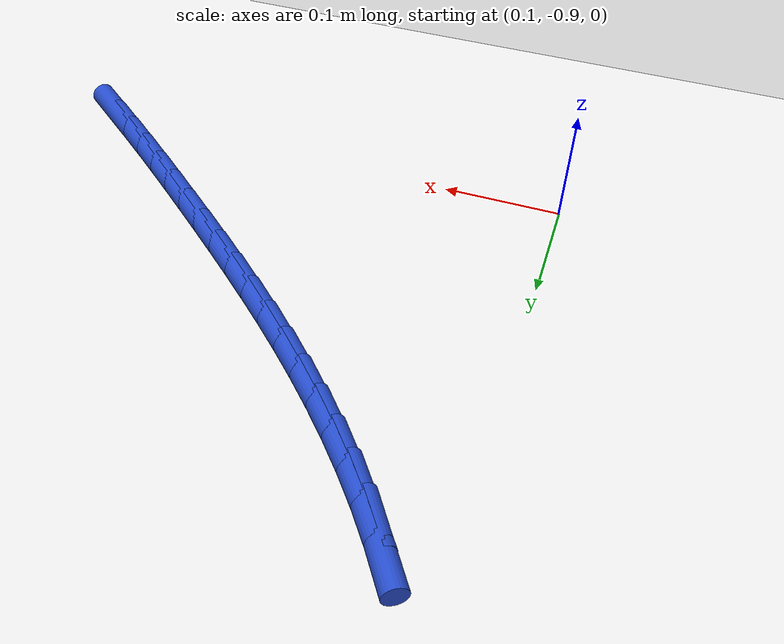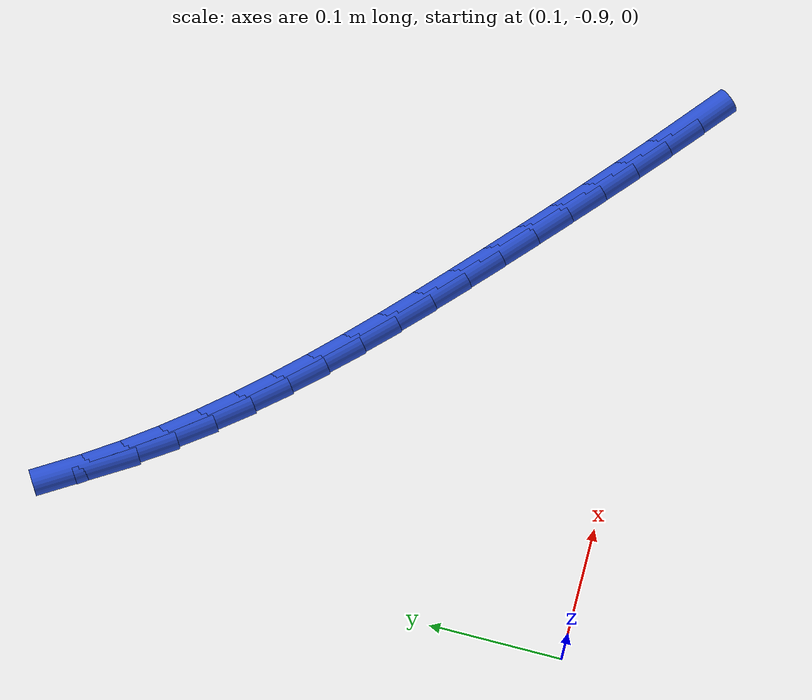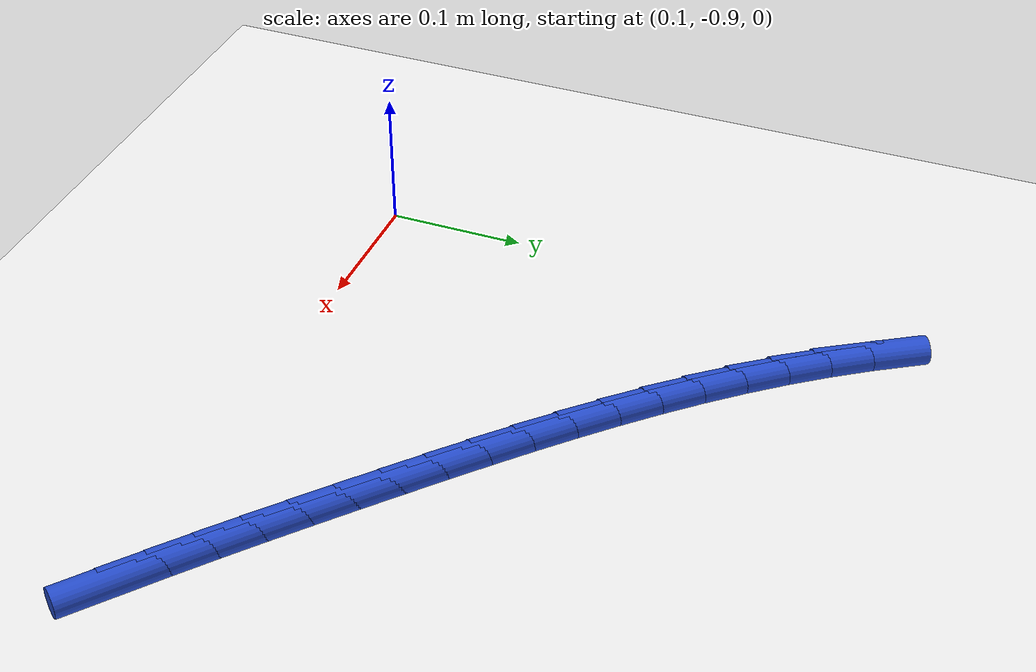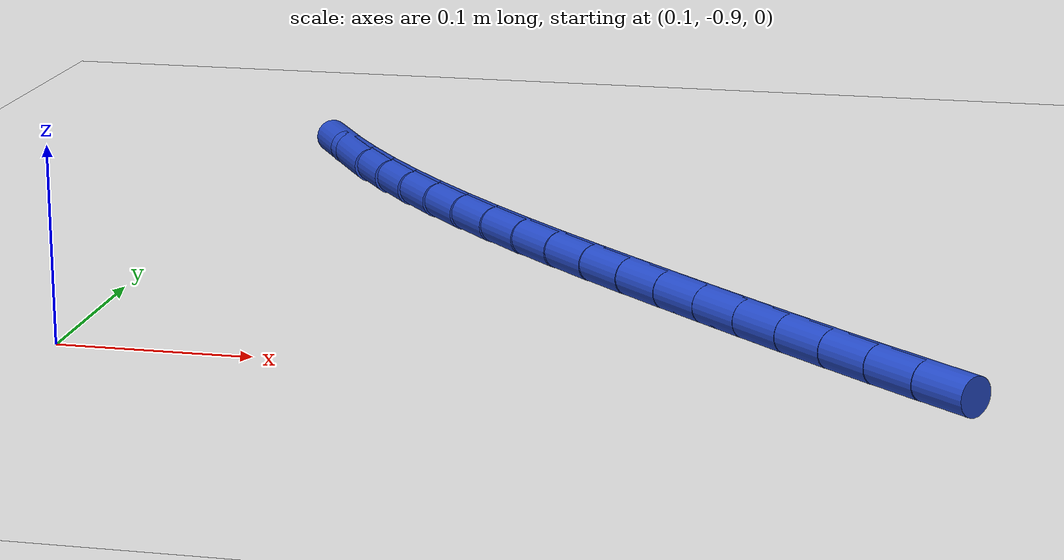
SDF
<sdf version="1.6">
 <world name="default">
  <model name="ground_plane">
   <static>1</static>
   <link name="link">
    <collision name="collision">
     <geometry><plane><normal>0 0 1</normal><size>100 100</size></plane></geometry>
     <surface><friction><ode><mu>100</mu><mu2>50</mu2></ode></friction></surface>
    </collision>
    <visual name="visual">
     <cast_shadows>0</cast_shadows>
     <geometry><plane><normal>0 0 1</normal><size>100 100</size></plane></geometry>
     <material>
      <script><uri>file://media/materials/scripts/gazebo.material</uri><name>Gazebo/WhiteGlow</name></script>
     </material>
    </visual>
   </link>
  </model>
  <model name="line">
   <link name="link_185">
    <pose>0.5148802186777577 -0.8932716584947242 0.01 0 1.57 -0.6899984234965191</pose>
    <collision name="collision">
     <geometry><cylinder><radius>0.01</radius><length>0.08</length></cylinder></geometry>
    </collision>
    <visual name="visual">
     <material>
      <script><name>Gazebo/Blue</name><uri>file://media/materials/scripts/gazebo.material</uri></script>
     </material>
     <geometry><cylinder><radius>0.01</radius><length>0.08</length></cylinder></geometry>
    </visual>
   </link>
   <link name="link_186">
    <pose>0.49137870944372686 -0.8738750766835465 0.01 0 1.57 -0.7010132687124384</pose>
    <collision name="collision">
     <geometry><cylinder><radius>0.01</radius><length>0.08</length></cylinder></geometry>
    </collision>
    <visual name="visual">
     <material>
      <script><name>Gazebo/Blue</name><uri>file://media/materials/scripts/gazebo.material</uri></script>
     </material>
     <geometry><cylinder><radius>0.01</radius><length>0.08</length></cylinder></geometry>
    </visual>
   </link>
   <link name="link_187">
    <pose>0.4681795832727678 -0.8542945039874247 0.01 0 1.57 -0.7106507558564402</pose>
    <collision name="collision">
     <geometry><cylinder><radius>0.01</radius><length>0.08</length></cylinder></geometry>
    </collision>
    <visual name="visual">
     <material>
      <script><name>Gazebo/Blue</name><uri>file://media/materials/scripts/gazebo.material</uri></script>
     </material>
     <geometry><cylinder><radius>0.01</radius><length>0.08</length></cylinder></geometry>
    </visual>
   </link>
   <link name="link_188">
    <pose>0.4452123560387705 -0.834527511222739 0.01 0 1.57 -0.7188487778604937</pose>
    <collision name="collision">
     <geometry><cylinder><radius>0.01</radius><length>0.08</length></cylinder></geometry>
    </collision>
    <visual name="visual">
     <material>
      <script><name>Gazebo/Blue</name><uri>file://media/materials/scripts/gazebo.material</uri></script>
     </material>
     <geometry><cylinder><radius>0.01</radius><length>0.08</length></cylinder></geometry>
    </visual>
   </link>
   <link name="link_189">
    <pose>0.42240654361562596 -0.814571669205872 0.01 0 1.57 -0.7255620400661243</pose>
    <collision name="collision">
     <geometry><cylinder><radius>0.01</radius><length>0.08</length></cylinder></geometry>
    </collision>
    <visual name="visual">
     <material>
      <script><name>Gazebo/Blue</name><uri>file://media/materials/scripts/gazebo.material</uri></script>
     </material>
     <geometry><cylinder><radius>0.01</radius><length>0.08</length></cylinder></geometry>
    </visual>
   </link>
   <link name="link_190">
    <pose>0.39969166187722394 -0.7944245487532033 0.01 0 1.57 -0.730764625793795</pose>
    <collision name="collision">
     <geometry><cylinder><radius>0.01</radius><length>0.08</length></cylinder></geometry>
    </collision>
    <visual name="visual">
     <material>
      <script><name>Gazebo/Blue</name><uri>file://media/materials/scripts/gazebo.material</uri></script>
     </material>
     <geometry><cylinder><radius>0.01</radius><length>0.08</length></cylinder></geometry>
    </visual>
   </link>
   <link name="link_191">
    <pose>0.37699730522503305 -0.7740836996979357 0.01 0 1.57 -0.7356637230261693</pose>
    <collision name="collision">
     <geometry><cylinder><radius>0.01</radius><length>0.08</length></cylinder></geometry>
    </collision>
    <visual name="visual">
     <material>
      <script><name>Gazebo/Blue</name><uri>file://media/materials/scripts/gazebo.material</uri></script>
     </material>
     <geometry><cylinder><radius>0.01</radius><length>0.08</length></cylinder></geometry>
    </visual>
   </link>
   <link name="link_192">
    <pose>0.3542960207546919 -0.7535351945787901 0.01 0 1.57 -0.7434827450134199</pose>
    <collision name="collision">
     <geometry><cylinder><radius>0.01</radius><length>0.08</length></cylinder></geometry>
    </collision>
    <visual name="visual">
     <material>
      <script><name>Gazebo/Blue</name><uri>file://media/materials/scripts/gazebo.material</uri></script>
     </material>
     <geometry><cylinder><radius>0.01</radius><length>0.08</length></cylinder></geometry>
    </visual>
   </link>
   <link name="link_193">
    <pose>0.33167434576835775 -0.7327346468633336 0.01 0 1.57 -0.7547487347782063</pose>
    <collision name="collision">
     <geometry><cylinder><radius>0.01</radius><length>0.08</length></cylinder></geometry>
    </collision>
    <visual name="visual">
     <material>
      <script><name>Gazebo/Blue</name><uri>file://media/materials/scripts/gazebo.material</uri></script>
     </material>
     <geometry><cylinder><radius>0.01</radius><length>0.08</length></cylinder></geometry>
    </visual>
   </link>
   <link name="link_194">
    <pose>0.30923751528858623 -0.7116326738425897 0.01 0 1.57 -0.7694825953252268</pose>
    <collision name="collision">
     <geometry><cylinder><radius>0.01</radius><length>0.08</length></cylinder></geometry>
    </collision>
    <visual name="visual">
     <material>
      <script><name>Gazebo/Blue</name><uri>file://media/materials/scripts/gazebo.material</uri></script>
     </material>
     <geometry><cylinder><radius>0.01</radius><length>0.08</length></cylinder></geometry>
    </visual>
   </link>
   <link name="link_195">
    <pose>0.28709076433793257 -0.6901798928075812 0.01 0 1.57 -0.7877267164049757</pose>
    <collision name="collision">
     <geometry><cylinder><radius>0.01</radius><length>0.08</length></cylinder></geometry>
    </collision>
    <visual name="visual">
     <material>
      <script><name>Gazebo/Blue</name><uri>file://media/materials/scripts/gazebo.material</uri></script>
     </material>
     <geometry><cylinder><radius>0.01</radius><length>0.08</length></cylinder></geometry>
    </visual>
   </link>
   <link name="link_196">
    <pose>0.2653393279389535 -0.6683269210493324 0.01 0 1.57 -0.8095398670313654</pose>
    <collision name="collision">
     <geometry><cylinder><radius>0.01</radius><length>0.08</length></cylinder></geometry>
    </collision>
    <visual name="visual">
     <material>
      <script><name>Gazebo/Blue</name><uri>file://media/materials/scripts/gazebo.material</uri></script>
     </material>
     <geometry><cylinder><radius>0.01</radius><length>0.08</length></cylinder></geometry>
    </visual>
   </link>
   <link name="link_197">
    <pose>0.2440884411142042 -0.6460243758588667 0.01 0 1.57 -0.834990785168333</pose>
    <collision name="collision">
     <geometry><cylinder><radius>0.01</radius><length>0.08</length></cylinder></geometry>
    </collision>
    <visual name="visual">
     <material>
      <script><name>Gazebo/Blue</name><uri>file://media/materials/scripts/gazebo.material</uri></script>
     </material>
     <geometry><cylinder><radius>0.01</radius><length>0.08</length></cylinder></geometry>
    </visual>
   </link>
   <link name="link_198">
    <pose>0.22344333888624043 -0.6232228745272074 0.01 0 1.57 -0.8641501126487035</pose>
    <collision name="collision">
     <geometry><cylinder><radius>0.01</radius><length>0.08</length></cylinder></geometry>
    </collision>
    <visual name="visual">
     <material>
      <script><name>Gazebo/Blue</name><uri>file://media/materials/scripts/gazebo.material</uri></script>
     </material>
     <geometry><cylinder><radius>0.01</radius><length>0.08</length></cylinder></geometry>
    </visual>
   </link>
   <link name="link_199">
    <pose>0.20350925627761735 -0.5998730343453772 0.01 0 1.57 -0.8970803474235639</pose>
    <collision name="collision">
     <geometry><cylinder><radius>0.01</radius><length>0.08</length></cylinder></geometry>
    </collision>
    <visual name="visual">
     <material>
      <script><name>Gazebo/Blue</name><uri>file://media/materials/scripts/gazebo.material</uri></script>
     </material>
     <geometry><cylinder><radius>0.01</radius><length>0.08</length></cylinder></geometry>
    </visual>
   </link>
   <link name="link_200">
    <pose>0.1843914283108917 -0.5759254726044009 0.01 0 1.57 -0.9338235947002108</pose>
    <collision name="collision">
     <geometry><cylinder><radius>0.01</radius><length>0.08</length></cylinder></geometry>
    </collision>
    <visual name="visual">
     <material>
      <script><name>Gazebo/Blue</name><uri>file://media/materials/scripts/gazebo.material</uri></script>
     </material>
     <geometry><cylinder><radius>0.01</radius><length>0.08</length></cylinder></geometry>
    </visual>
   </link>
   <link name="link_201">
    <pose>0.1661950900086186 -0.5513308065953011 0.01 0 1.57 -0.9742141799268575</pose>
    <collision name="collision">
     <geometry><cylinder><radius>0.01</radius><length>0.08</length></cylinder></geometry>
    </collision>
    <visual name="visual">
     <material>
      <script><name>Gazebo/Blue</name><uri>file://media/materials/scripts/gazebo.material</uri></script>
     </material>
     <geometry><cylinder><radius>0.01</radius><length>0.08</length></cylinder></geometry>
    </visual>
   </link>
   <link name="link_202">
    <pose>0.14902116697746243 -0.526042718437634 0.01 0 1.57 -1.0153392349504404</pose>
    <collision name="collision">
     <geometry><cylinder><radius>0.01</radius><length>0.08</length></cylinder></geometry>
    </collision>
    <visual name="visual">
     <material>
      <script><name>Gazebo/Blue</name><uri>file://media/materials/scripts/gazebo.material</uri></script>
     </material>
     <geometry><cylinder><radius>0.01</radius><length>0.08</length></cylinder></geometry>
    </visual>
   </link>
  </model>
 </world>
</sdf>
